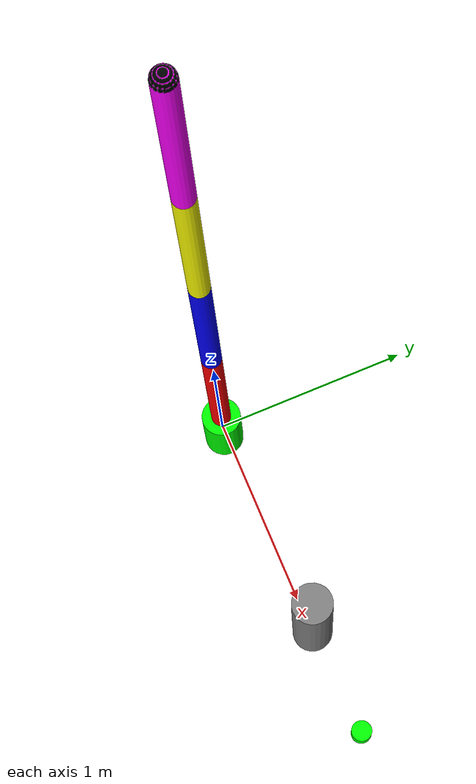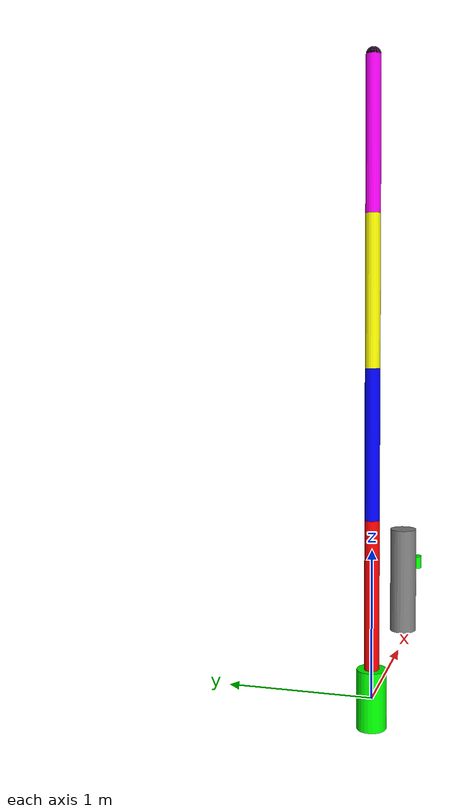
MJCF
<mujoco model="3dof_arm">
    <worldbody>
        <light diffuse=".5 .5 .5" pos="0 0 3" dir="0 0 -1"/>
        <body name="base" pos="0 0 0">
            <geom type="cylinder" size="0.1 0.2" rgba="0 1 0 1"/>
            <body name="link1" pos="0 0 0.2">
                <joint name="joint1" type="hinge" axis="0 0 1"/>
                <geom type="capsule" size="0.05 0.5" pos="0 0 0.5" rgba="1 0 0 1"/>
                <body name="link2" pos="0 0 1">
                    <joint name="joint2" type="hinge" axis="0 1 0"/>
                    <geom type="capsule" size="0.05 0.5" pos="0 0 0.5" rgba="0 0 1 1"/>
                    <body name="link3" pos="0 0 1">
                        <joint name="joint3" type="hinge" axis="0 1 0"/>
                        <geom type="capsule" size="0.05 0.5" pos="0 0 0.5" rgba="1 1 0 1"/>
			<body name="link4" pos="0 0 1">
                        	<joint name="joint4" type="hinge" axis="0 1 0"/>
                        	<geom type="capsule" size="0.05 0.5" pos="0 0 0.5" rgba="1 0 1 1"/>
				<site name="end_effector" pos="0 0 1" type="sphere" size="0.05" rgba="0 0 0 1"/>
			</body>
                    </body>
                </body>
            </body>
        </body>
	<body name="obstacle" pos="1.2 0.0 0.5" mocap="true">
            <geom type="cylinder" size="0.1 0.4" rgba="0.5 0.5 0.5 1"/>
        </body>

        <body name="target" pos="1.8 0.0 0.5">
            <geom type="cylinder" size="0.05 0.05" rgba="0 1 0 1" contype="0" conaffinity="0"/>
        </body>
    </worldbody>

    <actuator>
        <motor joint="joint1" name="motor1" ctrlrange="-500 500" ctrllimited="true"/>
        <motor joint="joint2" name="motor2" ctrlrange="-500 500" ctrllimited="true"/>
        <motor joint="joint3" name="motor3" ctrlrange="-500 500" ctrllimited="true"/>
	<motor joint="joint4" name="motor4" ctrlrange="-500 500" ctrllimited="true"/>

    </actuator>

    <sensor>
        <jointpos joint="joint1" name="enc_pos_j1"/>
        <jointpos joint="joint2" name="enc_pos_j2"/>
        <jointpos joint="joint3" name="enc_pos_j3"/>
        <jointpos joint="joint4" name="enc_pos_j4"/>

        <jointvel joint="joint1" name="enc_vel_j1"/>
        <jointvel joint="joint2" name="enc_vel_j2"/>
	<jointvel joint="joint3" name="enc_vel_j3"/>
        <jointvel joint="joint4" name="enc_vel_j4"/>
    </sensor>

    <keyframe>
        <key name="home_bent" qpos="0.1 0.1 0.1" />
    </keyframe>
</mujoco>
